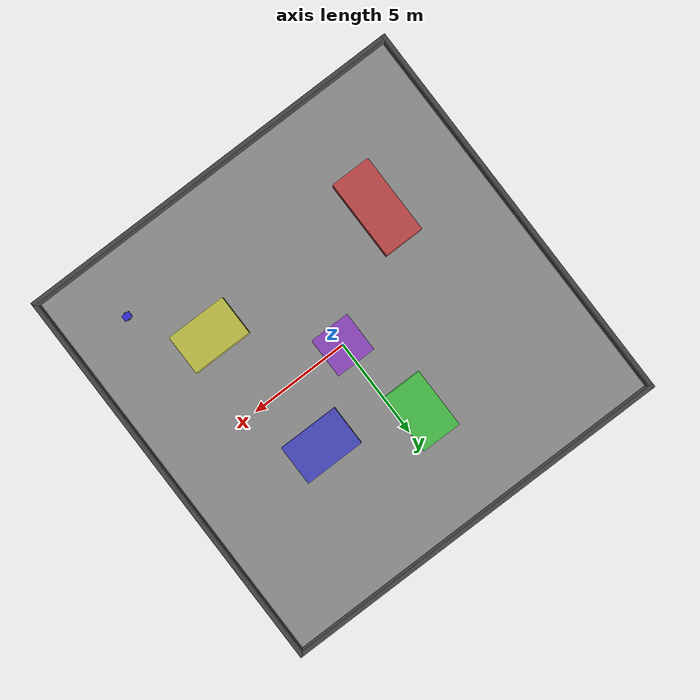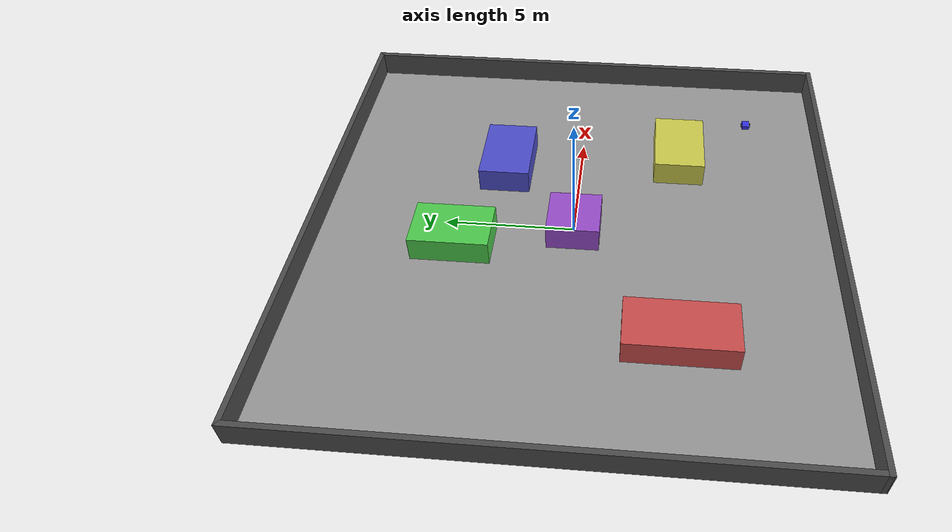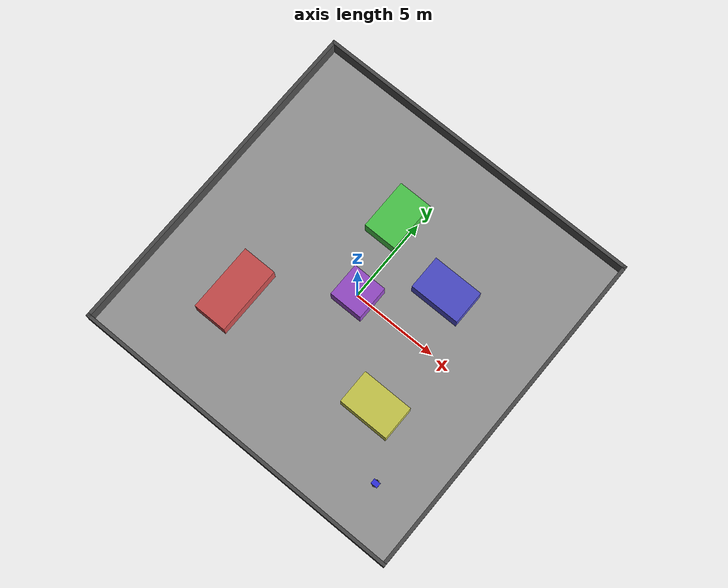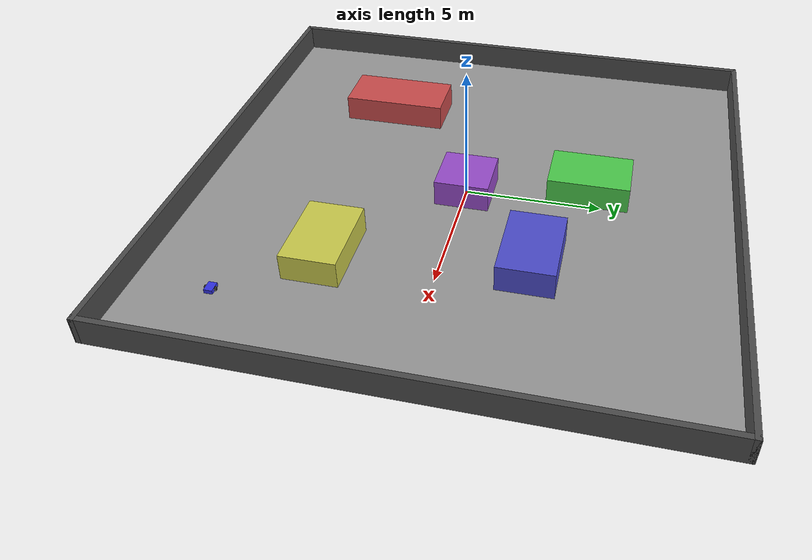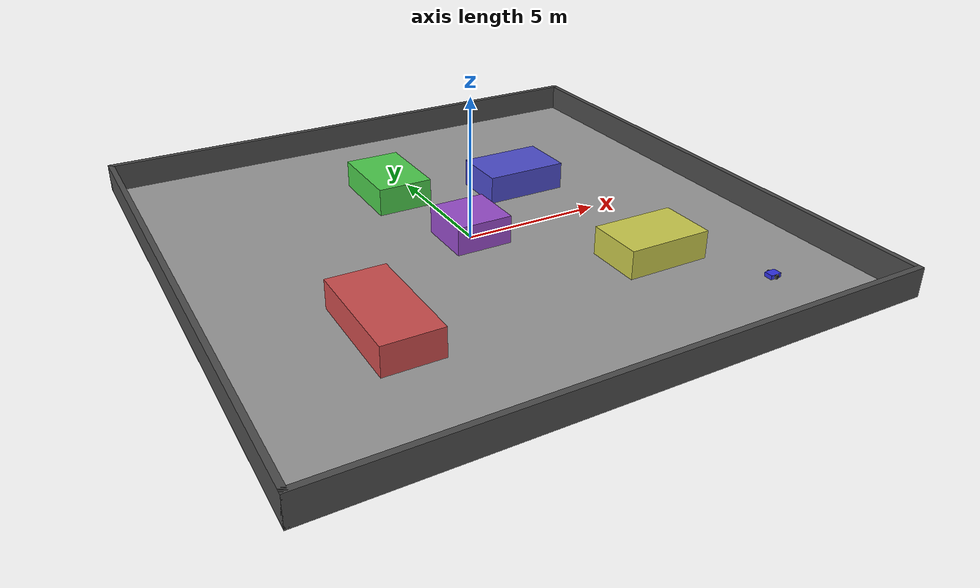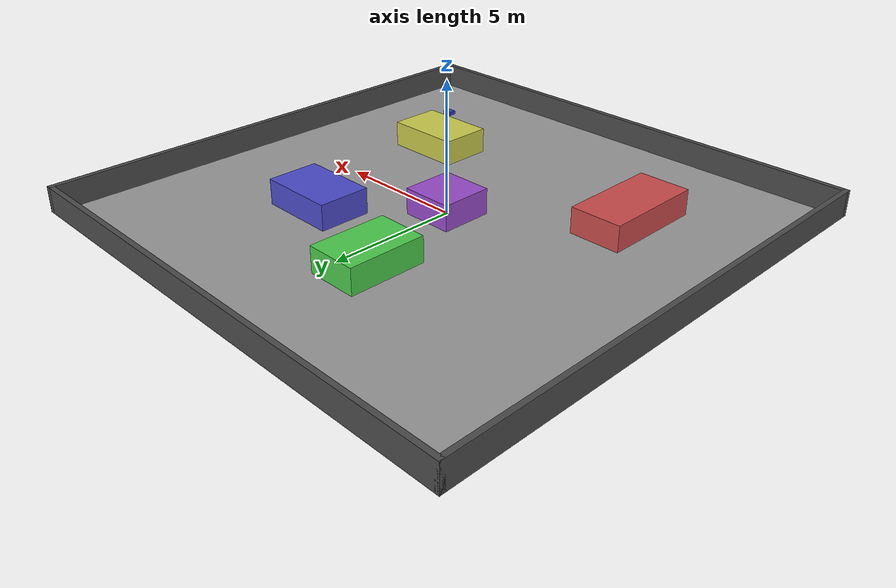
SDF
<?xml version="1.0"?>
<!--
  obstacle_course.sdf
  20m x 20m floor with five rectangular obstacles. Layout matches the
  hard-coded grid in NavigationNode::buildDemoMap so the planner sees
  what's actually in the world.
-->
<sdf version="1.10">
  <world name="obstacle_course">

    <physics name="1ms" type="ignored">
      <max_step_size>0.001</max_step_size>
      <real_time_factor>1.0</real_time_factor>
    </physics>

    <plugin filename="gz-sim-physics-system"        name="gz::sim::systems::Physics"/>
    <plugin filename="gz-sim-user-commands-system"  name="gz::sim::systems::UserCommands"/>
    <plugin filename="gz-sim-scene-broadcaster-system" name="gz::sim::systems::SceneBroadcaster"/>
    <plugin filename="gz-sim-sensors-system"        name="gz::sim::systems::Sensors">
      <render_engine>ogre2</render_engine>
    </plugin>
    <plugin filename="gz-sim-imu-system"            name="gz::sim::systems::Imu"/>

    <light type="directional" name="sun">
      <pose>0 0 10 0 0 0</pose>
      <diffuse>1 1 1 1</diffuse>
      <direction>-0.5 0.5 -1</direction>
      <cast_shadows>true</cast_shadows>
    </light>

    <!-- 20x20 floor -->
    <model name="ground_plane">
      <static>true</static>
      <link name="link">
        <collision name="c">
          <geometry><box><size>20 20 0.01</size></box></geometry>
        </collision>
        <visual name="v">
          <geometry><box><size>20 20 0.01</size></box></geometry>
          <material>
            <ambient>0.4 0.4 0.4 1</ambient>
            <diffuse>0.6 0.6 0.6 1</diffuse>
          </material>
        </visual>
      </link>
    </model>

    <!-- Border walls (4 thin boxes around the perimeter) -->
    <model name="wall_n"><static>true</static><pose>0 9.9 0.5 0 0 0</pose>
      <link name="l"><collision name="c"><geometry><box><size>20 0.2 1</size></box></geometry></collision>
      <visual name="v"><geometry><box><size>20 0.2 1</size></box></geometry>
      <material><ambient>0.2 0.2 0.2 1</ambient><diffuse>0.3 0.3 0.3 1</diffuse></material></visual></link></model>
    <model name="wall_s"><static>true</static><pose>0 -9.9 0.5 0 0 0</pose>
      <link name="l"><collision name="c"><geometry><box><size>20 0.2 1</size></box></geometry></collision>
      <visual name="v"><geometry><box><size>20 0.2 1</size></box></geometry>
      <material><ambient>0.2 0.2 0.2 1</ambient><diffuse>0.3 0.3 0.3 1</diffuse></material></visual></link></model>
    <model name="wall_e"><static>true</static><pose>9.9 0 0.5 0 0 0</pose>
      <link name="l"><collision name="c"><geometry><box><size>0.2 20 1</size></box></geometry></collision>
      <visual name="v"><geometry><box><size>0.2 20 1</size></box></geometry>
      <material><ambient>0.2 0.2 0.2 1</ambient><diffuse>0.3 0.3 0.3 1</diffuse></material></visual></link></model>
    <model name="wall_w"><static>true</static><pose>-9.9 0 0.5 0 0 0</pose>
      <link name="l"><collision name="c"><geometry><box><size>0.2 20 1</size></box></geometry></collision>
      <visual name="v"><geometry><box><size>0.2 20 1</size></box></geometry>
      <material><ambient>0.2 0.2 0.2 1</ambient><diffuse>0.3 0.3 0.3 1</diffuse></material></visual></link></model>

    <!-- Obstacles (centers and sizes match buildDemoMap rectangles) -->
    <model name="obs_sw"><static>true</static><pose>-5 -4 0.5 0 0 0</pose>
      <link name="l"><collision name="c"><geometry><box><size>2 4 1</size></box></geometry></collision>
      <visual name="v"><geometry><box><size>2 4 1</size></box></geometry>
      <material><ambient>0.7 0.2 0.2 1</ambient><diffuse>0.8 0.3 0.3 1</diffuse></material></visual></link></model>

    <model name="obs_ne"><static>true</static><pose>3.5 3 0.5 0 0 0</pose>
      <link name="l"><collision name="c"><geometry><box><size>3 2 1</size></box></geometry></collision>
      <visual name="v"><geometry><box><size>3 2 1</size></box></geometry>
      <material><ambient>0.2 0.2 0.7 1</ambient><diffuse>0.3 0.3 0.8 1</diffuse></material></visual></link></model>

    <model name="obs_n"><static>true</static><pose>-1 4.5 0.5 0 0 0</pose>
      <link name="l"><collision name="c"><geometry><box><size>2 3 1</size></box></geometry></collision>
      <visual name="v"><geometry><box><size>2 3 1</size></box></geometry>
      <material><ambient>0.2 0.7 0.2 1</ambient><diffuse>0.3 0.8 0.3 1</diffuse></material></visual></link></model>

    <model name="obs_se"><static>true</static><pose>4.5 -4 0.5 0 0 0</pose>
      <link name="l"><collision name="c"><geometry><box><size>3 2 1</size></box></geometry></collision>
      <visual name="v"><geometry><box><size>3 2 1</size></box></geometry>
      <material><ambient>0.7 0.7 0.2 1</ambient><diffuse>0.8 0.8 0.3 1</diffuse></material></visual></link></model>

    <model name="pillar"><static>true</static><pose>0 0 0.5 0 0 0</pose>
      <link name="l"><collision name="c"><geometry><box><size>2 2 1</size></box></geometry></collision>
      <visual name="v"><geometry><box><size>2 2 1</size></box></geometry>
      <material><ambient>0.5 0.2 0.7 1</ambient><diffuse>0.6 0.3 0.8 1</diffuse></material></visual></link></model>

    <!-- Spawn the diff-drive robot -->
    <include>
      <uri>model://diff_drive_bot</uri>
      <pose>7 -7 0.1 0 0 0</pose>
    </include>

  </world>
</sdf>

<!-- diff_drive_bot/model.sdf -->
<sdf version="1.10">
  <model name="diff_drive_bot">

    <!-- Chassis -->
    <link name="base_link">
      <inertial>
        <mass>5.0</mass>
        <inertia>
          <ixx>0.1</ixx><iyy>0.1</iyy><izz>0.1</izz>
          <ixy>0</ixy><ixz>0</ixz><iyz>0</iyz>
        </inertia>
      </inertial>
      <collision name="c">
        <geometry><box><size>0.4 0.3 0.15</size></box></geometry>
      </collision>
      <visual name="v">
        <geometry><box><size>0.4 0.3 0.15</size></box></geometry>
        <material>
          <ambient>0.1 0.1 0.8 1</ambient>
          <diffuse>0.2 0.2 0.9 1</diffuse>
        </material>
      </visual>

      <!-- IMU sensor -->
      <sensor name="imu_sensor" type="imu">
        <always_on>true</always_on>
        <update_rate>100</update_rate>
        <topic>imu</topic>
        <gz_frame_id>base_link</gz_frame_id>
        <imu>
          <angular_velocity>
            <x><noise type="gaussian"><mean>0</mean><stddev>0.01</stddev></noise></x>
            <y><noise type="gaussian"><mean>0</mean><stddev>0.01</stddev></noise></y>
            <z><noise type="gaussian"><mean>0</mean><stddev>0.01</stddev></noise></z>
          </angular_velocity>
          <linear_acceleration>
            <x><noise type="gaussian"><mean>0</mean><stddev>0.05</stddev></noise></x>
            <y><noise type="gaussian"><mean>0</mean><stddev>0.05</stddev></noise></y>
            <z><noise type="gaussian"><mean>0</mean><stddev>0.05</stddev></noise></z>
          </linear_acceleration>
        </imu>
      </sensor>

      <!-- 2D LiDAR -->
      <sensor name="lidar" type="gpu_lidar">
        <pose>0.15 0 0.15 0 0 0</pose>
        <topic>scan</topic>
        <gz_frame_id>base_link</gz_frame_id>
        <update_rate>10</update_rate>
        <always_on>true</always_on>
        <visualize>true</visualize>
        <lidar>
          <scan>
            <horizontal>
              <samples>360</samples>
              <resolution>1</resolution>
              <min_angle>-3.14159</min_angle>
              <max_angle> 3.14159</max_angle>
            </horizontal>
          </scan>
          <range>
            <min>0.10</min>
            <max>10.0</max>
            <resolution>0.01</resolution>
          </range>
          <noise><type>gaussian</type><mean>0</mean><stddev>0.01</stddev></noise>
        </lidar>
      </sensor>
    </link>

    <!-- Wheels -->
    <link name="left_wheel">
      <pose>0 0.18 0 -1.5708 0 0</pose>
      <inertial><mass>0.2</mass>
        <inertia><ixx>0.001</ixx><iyy>0.001</iyy><izz>0.001</izz>
        <ixy>0</ixy><ixz>0</ixz><iyz>0</iyz></inertia></inertial>
      <collision name="c"><geometry><cylinder><radius>0.08</radius><length>0.04</length></cylinder></geometry></collision>
      <visual name="v"><geometry><cylinder><radius>0.08</radius><length>0.04</length></cylinder></geometry>
      <material><ambient>0.1 0.1 0.1 1</ambient></material></visual>
    </link>

    <link name="right_wheel">
      <pose>0 -0.18 0 -1.5708 0 0</pose>
      <inertial><mass>0.2</mass>
        <inertia><ixx>0.001</ixx><iyy>0.001</iyy><izz>0.001</izz>
        <ixy>0</ixy><ixz>0</ixz><iyz>0</iyz></inertia></inertial>
      <collision name="c"><geometry><cylinder><radius>0.08</radius><length>0.04</length></cylinder></geometry></collision>
      <visual name="v"><geometry><cylinder><radius>0.08</radius><length>0.04</length></cylinder></geometry>
      <material><ambient>0.1 0.1 0.1 1</ambient></material></visual>
    </link>

    <link name="caster">
      <pose>-0.15 0 -0.03 0 0 0</pose>
      <inertial><mass>0.05</mass>
        <inertia><ixx>0.0001</ixx><iyy>0.0001</iyy><izz>0.0001</izz>
        <ixy>0</ixy><ixz>0</ixz><iyz>0</iyz></inertia></inertial>
      <collision name="c"><geometry><sphere><radius>0.04</radius></sphere></geometry>
        <surface><friction><ode><mu>0</mu><mu2>0</mu2></ode></friction></surface></collision>
      <visual name="v"><geometry><sphere><radius>0.04</radius></sphere></geometry></visual>
    </link>

    <joint name="left_wheel_joint" type="revolute">
      <parent>base_link</parent><child>left_wheel</child>
      <axis>
        <xyz>0 0 1</xyz>
        <dynamics><damping>0.01</damping></dynamics>
      </axis>
    </joint>
    <joint name="right_wheel_joint" type="revolute">
      <parent>base_link</parent><child>right_wheel</child>
      <axis>
        <xyz>0 0 1</xyz>
        <dynamics><damping>0.01</damping></dynamics>
      </axis>
    </joint>
    <joint name="caster_joint" type="ball">
      <parent>base_link</parent><child>caster</child>
    </joint>

    <!-- Differential drive plugin: subscribes /cmd_vel, publishes /odom -->
    <plugin filename="gz-sim-diff-drive-system" name="gz::sim::systems::DiffDrive">
      <left_joint>left_wheel_joint</left_joint>
      <right_joint>right_wheel_joint</right_joint>
      <wheel_separation>0.36</wheel_separation>
      <wheel_radius>0.08</wheel_radius>
      <odom_publish_frequency>50</odom_publish_frequency>
      <topic>cmd_vel</topic>
      <odom_topic>odom</odom_topic>
      <frame_id>odom</frame_id>
      <child_frame_id>base_link</child_frame_id>
      <!-- Route the encoder TF to a dummy topic; EKF owns the real /tf. -->
      <tf_topic>/diff_drive/tf_unused</tf_topic>
    </plugin>

    <plugin filename="gz-sim-pose-publisher-system" name="gz::sim::systems::PosePublisher">
      <publish_link_pose>true</publish_link_pose>
      <publish_collision_pose>false</publish_collision_pose>
      <publish_visual_pose>false</publish_visual_pose>
      <publish_nested_model_pose>false</publish_nested_model_pose>
      <use_pose_vector_msg>false</use_pose_vector_msg>
      <update_frequency>50</update_frequency>
    </plugin>

    <plugin filename="gz-sim-joint-state-publisher-system"
            name="gz::sim::systems::JointStatePublisher"/>

  </model>
</sdf>
